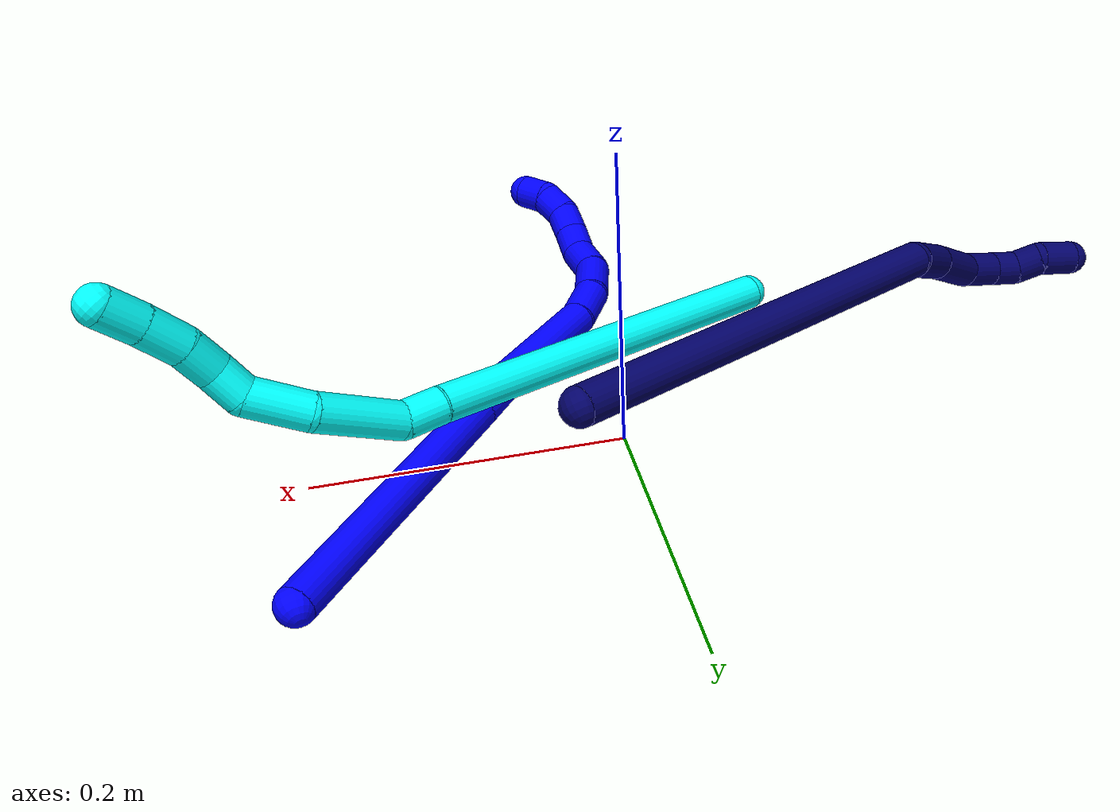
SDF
<sdf version="1.7">
 <world name="default">
  <model name="photoneo_s_sensor">
   <static>1</static>
   <pose>0 0 2 1.57079 1.57079 3.14159</pose>
   <link name="link">
    <inertial><mass>0.1</mass></inertial>
    <sensor name="sensor" type="depth">
     <update_rate>30</update_rate>
     <camera>
      <horizontal_fov>1.22</horizontal_fov>
      <image><width>1920</width><height>1200</height><format>B8G8R8</format></image>
      <clip><near>0.1</near><far>4</far></clip>
      <depth_camera><output>points</output></depth_camera>
     </camera>
     <plugin name="camera_plugin" filename="libgazebo_ros_depth_camera.so">
      <baseline>0.2</baseline>
      <alwaysOn>1</alwaysOn>
      <updateRate>0.0</updateRate>
      <cameraName>camera_ir</cameraName>
      <imageTopicName>/camera/color/image_raw</imageTopicName>
      <cameraInfoTopicName>/camera/color/camera_info</cameraInfoTopicName>
      <depthImageTopicName>/camera/depth/image_raw</depthImageTopicName>
      <depthImageCameraInfoTopicName>/camera/depth/camera_info</depthImageCameraInfoTopicName>
      <pointCloudTopicName>/camera/depth/points</pointCloudTopicName>
      <frameName>fr_optical</frameName>
      <pointCloudCutoff>0.1</pointCloudCutoff>
      <pointCloudCutoffMax>2.0</pointCloudCutoffMax>
      <distortionK1>0</distortionK1>
      <distortionK2>0</distortionK2>
      <distortionK3>0</distortionK3>
      <distortionT1>0</distortionT1>
      <distortionT2>0</distortionT2>
      <CxPrime>0</CxPrime>
      <Cx>0</Cx>
      <Cy>0</Cy>
      <focalLength>0</focalLength>
      <hackBaseline>0</hackBaseline>
     </plugin>
    </sensor>
   </link>
  </model>
  <model name="bin">
   <static>1</static>
   <link name="bottom">
    <collision name="collision-bottom">
     <pose>0 0 -0.01 0 -0 0</pose>
     <geometry><box><size>0.8 0.6 0.02</size></box></geometry>
     <surface>
      <friction><ode><mu>100</mu><mu2>100</mu2></ode></friction>
      <contact><collide_bitmask>65535</collide_bitmask></contact>
     </surface>
    </collision>
   </link>
   <link name="west_wall">
    <collision name="collision-west_wall">
     <pose>-0.41 0 0.1 0 -0 0</pose>
     <geometry><box><size>0.02 0.6 0.2</size></box></geometry>
     <surface>
      <friction><ode><mu>100</mu><mu2>100</mu2></ode></friction>
      <contact><collide_bitmask>65535</collide_bitmask></contact>
     </surface>
    </collision>
   </link>
   <link name="east_wall">
    <collision name="collision-east_wall">
     <pose>0.41 0 0.1 0 -0 0</pose>
     <geometry><box><size>0.02 0.6 0.2</size></box></geometry>
     <surface>
      <friction><ode><mu>100</mu><mu2>100</mu2></ode></friction>
      <contact><collide_bitmask>65535</collide_bitmask></contact>
     </surface>
    </collision>
   </link>
   <link name="south_wall">
    <collision name="collision-south_wall">
     <pose>0 -0.31 0.1 0 -0 0</pose>
     <geometry><box><size>0.8 0.02 0.2</size></box></geometry>
     <surface>
      <friction><ode><mu>100</mu><mu2>100</mu2></ode></friction>
      <contact><collide_bitmask>65535</collide_bitmask></contact>
     </surface>
    </collision>
   </link>
   <link name="north_wall">
    <collision name="collision-north_wall">
     <pose>0 0.31 0.1 0 -0 0</pose>
     <geometry><box><size>0.8 0.02 0.2</size></box></geometry>
     <surface>
      <friction><ode><mu>100</mu><mu2>100</mu2></ode></friction>
      <contact><collide_bitmask>65535</collide_bitmask></contact>
     </surface>
    </collision>
   </link>
  </model>
  <model name="1">
   <static>0</static>
   <link name="1">
    <collision name="collision-cylinder-e_1_1_4">
     <pose>-0.047788 -0.061187 0.062227 0.776971 -0.50099 -0.208687</pose>
     <geometry><cylinder><radius>0.0125</radius><length>0.198995</length></cylinder></geometry>
     <surface>
      <friction><ode><mu>1.16</mu><mu2>1.16</mu2><slip1>0</slip1><slip2>0</slip2></ode></friction>
      <contact><ode><kp>1e+06</kp><kd>1</kd><max_vel>0</max_vel><min_depth>0.001</min_depth></ode></contact>
     </surface>
    </collision>
    <visual name="visual-cylinder-e_1_1_4">
     <pose>-0.047788 -0.061187 0.062227 0.776971 -0.50099 -0.208687</pose>
     <geometry><cylinder><radius>0.0125</radius><length>0.198995</length></cylinder></geometry>
     <material><ambient>0 0 1 1</ambient></material>
    </visual>
    <collision name="collision-cylinder-e_2_4_5">
     <pose>-0.10465 -0.129937 0.133306 0.706986 -0.662027 -0.252267</pose>
     <geometry><cylinder><radius>0.0125</radius><length>0.029522</length></cylinder></geometry>
     <surface>
      <friction><ode><mu>1.16</mu><mu2>1.16</mu2><slip1>0</slip1><slip2>0</slip2></ode></friction>
      <contact><ode><kp>1e+06</kp><kd>1</kd><max_vel>0</max_vel><min_depth>0.001</min_depth></ode></contact>
     </surface>
    </collision>
    <visual name="visual-cylinder-e_2_4_5">
     <pose>-0.10465 -0.129937 0.133306 0.706986 -0.662027 -0.252267</pose>
     <geometry><cylinder><radius>0.0125</radius><length>0.029522</length></cylinder></geometry>
     <material><ambient>0 0 1 1</ambient></material>
    </visual>
    <collision name="collision-cylinder-e_3_5_6">
     <pose>-0.139918 -0.167301 0.168571 0.845625 -0.581835 -0.267829</pose>
     <geometry><cylinder><radius>0.0125</radius><length>0.095329</length></cylinder></geometry>
     <surface>
      <friction><ode><mu>1.16</mu><mu2>1.16</mu2><slip1>0</slip1><slip2>0</slip2></ode></friction>
      <contact><ode><kp>1e+06</kp><kd>1</kd><max_vel>0</max_vel><min_depth>0.001</min_depth></ode></contact>
     </surface>
    </collision>
    <visual name="visual-cylinder-e_3_5_6">
     <pose>-0.139918 -0.167301 0.168571 0.845625 -0.581835 -0.267829</pose>
     <geometry><cylinder><radius>0.0125</radius><length>0.095329</length></cylinder></geometry>
     <material><ambient>0 0 1 1</ambient></material>
    </visual>
    <collision name="collision-cylinder-e_4_6_7">
     <pose>-0.17296 -0.205547 0.206789 0.6209 -0.440771 -0.143498</pose>
     <geometry><cylinder><radius>0.0125</radius><length>0.032099</length></cylinder></geometry>
     <surface>
      <friction><ode><mu>1.16</mu><mu2>1.16</mu2><slip1>0</slip1><slip2>0</slip2></ode></friction>
      <contact><ode><kp>1e+06</kp><kd>1</kd><max_vel>0</max_vel><min_depth>0.001</min_depth></ode></contact>
     </surface>
    </collision>
    <visual name="visual-cylinder-e_4_6_7">
     <pose>-0.17296 -0.205547 0.206789 0.6209 -0.440771 -0.143498</pose>
     <geometry><cylinder><radius>0.0125</radius><length>0.032099</length></cylinder></geometry>
     <material><ambient>0 0 1 1</ambient></material>
    </visual>
    <collision name="collision-cylinder-e_5_7_8">
     <pose>-0.182795 -0.222759 0.234167 0.512783 -0.165665 -0.043524</pose>
     <geometry><cylinder><radius>0.0125</radius><length>0.036236</length></cylinder></geometry>
     <surface>
      <friction><ode><mu>1.16</mu><mu2>1.16</mu2><slip1>0</slip1><slip2>0</slip2></ode></friction>
      <contact><ode><kp>1e+06</kp><kd>1</kd><max_vel>0</max_vel><min_depth>0.001</min_depth></ode></contact>
     </surface>
    </collision>
    <visual name="visual-cylinder-e_5_7_8">
     <pose>-0.182795 -0.222759 0.234167 0.512783 -0.165665 -0.043524</pose>
     <geometry><cylinder><radius>0.0125</radius><length>0.036236</length></cylinder></geometry>
     <material><ambient>0 0 1 1</ambient></material>
    </visual>
    <collision name="collision-cylinder-e_6_8_9">
     <pose>-0.183669 -0.234596 0.26282 0.230466 0.15606 0.0181</pose>
     <geometry><cylinder><radius>0.0125</radius><length>0.027203</length></cylinder></geometry>
     <surface>
      <friction><ode><mu>1.16</mu><mu2>1.16</mu2><slip1>0</slip1><slip2>0</slip2></ode></friction>
      <contact><ode><kp>1e+06</kp><kd>1</kd><max_vel>0</max_vel><min_depth>0.001</min_depth></ode></contact>
     </surface>
    </collision>
    <visual name="visual-cylinder-e_6_8_9">
     <pose>-0.183669 -0.234596 0.26282 0.230466 0.15606 0.0181</pose>
     <geometry><cylinder><radius>0.0125</radius><length>0.027203</length></cylinder></geometry>
     <material><ambient>0 0 1 1</ambient></material>
    </visual>
    <collision name="collision-cylinder-e_7_9_10">
     <pose>-0.182825 -0.237369 0.285985 -0.029342 -0.125291 0.001841</pose>
     <geometry><cylinder><radius>0.0125</radius><length>0.020337</length></cylinder></geometry>
     <surface>
      <friction><ode><mu>1.16</mu><mu2>1.16</mu2><slip1>0</slip1><slip2>0</slip2></ode></friction>
      <contact><ode><kp>1e+06</kp><kd>1</kd><max_vel>0</max_vel><min_depth>0.001</min_depth></ode></contact>
     </surface>
    </collision>
    <visual name="visual-cylinder-e_7_9_10">
     <pose>-0.182825 -0.237369 0.285985 -0.029342 -0.125291 0.001841</pose>
     <geometry><cylinder><radius>0.0125</radius><length>0.020337</length></cylinder></geometry>
     <material><ambient>0 0 1 1</ambient></material>
    </visual>
    <collision name="collision-cylinder-e_8_10_11">
     <pose>-0.185231 -0.235917 0.306025 -0.115547 -0.112752 0.006528</pose>
     <geometry><cylinder><radius>0.0125</radius><length>0.020174</length></cylinder></geometry>
     <surface>
      <friction><ode><mu>1.16</mu><mu2>1.16</mu2><slip1>0</slip1><slip2>0</slip2></ode></friction>
      <contact><ode><kp>1e+06</kp><kd>1</kd><max_vel>0</max_vel><min_depth>0.001</min_depth></ode></contact>
     </surface>
    </collision>
    <visual name="visual-cylinder-e_8_10_11">
     <pose>-0.185231 -0.235917 0.306025 -0.115547 -0.112752 0.006528</pose>
     <geometry><cylinder><radius>0.0125</radius><length>0.020174</length></cylinder></geometry>
     <material><ambient>0 0 1 1</ambient></material>
    </visual>
    <collision name="collision-cylinder-e_9_11_12">
     <pose>-0.184079 -0.231832 0.325308 -0.304399 0.229833 -0.035405</pose>
     <geometry><cylinder><radius>0.0125</radius><length>0.020081</length></cylinder></geometry>
     <surface>
      <friction><ode><mu>1.16</mu><mu2>1.16</mu2><slip1>0</slip1><slip2>0</slip2></ode></friction>
      <contact><ode><kp>1e+06</kp><kd>1</kd><max_vel>0</max_vel><min_depth>0.001</min_depth></ode></contact>
     </surface>
    </collision>
    <visual name="visual-cylinder-e_9_11_12">
     <pose>-0.184079 -0.231832 0.325308 -0.304399 0.229833 -0.035405</pose>
     <geometry><cylinder><radius>0.0125</radius><length>0.020081</length></cylinder></geometry>
     <material><ambient>0 0 1 1</ambient></material>
    </visual>
    <collision name="collision-cylinder-e_10_12_2">
     <pose>-0.176008 -0.228151 0.342774 -0.09191 0.615872 -0.029251</pose>
     <geometry><cylinder><radius>0.0125</radius><length>0.020024</length></cylinder></geometry>
     <surface>
      <friction><ode><mu>1.16</mu><mu2>1.16</mu2><slip1>0</slip1><slip2>0</slip2></ode></friction>
      <contact><ode><kp>1e+06</kp><kd>1</kd><max_vel>0</max_vel><min_depth>0.001</min_depth></ode></contact>
     </surface>
    </collision>
    <visual name="visual-cylinder-e_10_12_2">
     <pose>-0.176008 -0.228151 0.342774 -0.09191 0.615872 -0.029251</pose>
     <geometry><cylinder><radius>0.0125</radius><length>0.020024</length></cylinder></geometry>
     <material><ambient>0 0 1 1</ambient></material>
    </visual>
    <collision name="collision-sphere-2">
     <pose>-0.170224 -0.227401 0.350912 0 -0 0</pose>
     <geometry><sphere><radius>0.0125</radius></sphere></geometry>
     <surface>
      <friction><ode><mu>1.16</mu><mu2>1.16</mu2><slip1>0</slip1><slip2>0</slip2></ode></friction>
      <contact><ode><kp>1e+06</kp><kd>1</kd><max_vel>0</max_vel><min_depth>0.001</min_depth></ode></contact>
     </surface>
    </collision>
    <visual name="visual-sphere-2">
     <pose>-0.170224 -0.227401 0.350912 0 -0 0</pose>
     <geometry><sphere><radius>0.0125</radius></sphere></geometry>
     <material><ambient>0 0 1 1</ambient></material>
    </visual>
    <collision name="collision-sphere-12">
     <pose>-0.181791 -0.228901 0.334635 0 -0 0</pose>
     <geometry><sphere><radius>0.0125</radius></sphere></geometry>
     <surface>
      <friction><ode><mu>1.16</mu><mu2>1.16</mu2><slip1>0</slip1><slip2>0</slip2></ode></friction>
      <contact><ode><kp>1e+06</kp><kd>1</kd><max_vel>0</max_vel><min_depth>0.001</min_depth></ode></contact>
     </surface>
    </collision>
    <visual name="visual-sphere-12">
     <pose>-0.181791 -0.228901 0.334635 0 -0 0</pose>
     <geometry><sphere><radius>0.0125</radius></sphere></geometry>
     <material><ambient>0 0 1 1</ambient></material>
    </visual>
    <collision name="collision-sphere-11">
     <pose>-0.186366 -0.234762 0.315982 0 -0 0</pose>
     <geometry><sphere><radius>0.0125</radius></sphere></geometry>
     <surface>
      <friction><ode><mu>1.16</mu><mu2>1.16</mu2><slip1>0</slip1><slip2>0</slip2></ode></friction>
      <contact><ode><kp>1e+06</kp><kd>1</kd><max_vel>0</max_vel><min_depth>0.001</min_depth></ode></contact>
     </surface>
    </collision>
    <visual name="visual-sphere-11">
     <pose>-0.186366 -0.234762 0.315982 0 -0 0</pose>
     <geometry><sphere><radius>0.0125</radius></sphere></geometry>
     <material><ambient>0 0 1 1</ambient></material>
    </visual>
    <collision name="collision-sphere-10">
     <pose>-0.184096 -0.237073 0.296069 0 -0 0</pose>
     <geometry><sphere><radius>0.0125</radius></sphere></geometry>
     <surface>
      <friction><ode><mu>1.16</mu><mu2>1.16</mu2><slip1>0</slip1><slip2>0</slip2></ode></friction>
      <contact><ode><kp>1e+06</kp><kd>1</kd><max_vel>0</max_vel><min_depth>0.001</min_depth></ode></contact>
     </surface>
    </collision>
    <visual name="visual-sphere-10">
     <pose>-0.184096 -0.237073 0.296069 0 -0 0</pose>
     <geometry><sphere><radius>0.0125</radius></sphere></geometry>
     <material><ambient>0 0 1 1</ambient></material>
    </visual>
    <collision name="collision-sphere-9">
     <pose>-0.181555 -0.237665 0.275901 0 -0 0</pose>
     <geometry><sphere><radius>0.0125</radius></sphere></geometry>
     <surface>
      <friction><ode><mu>1.16</mu><mu2>1.16</mu2><slip1>0</slip1><slip2>0</slip2></ode></friction>
      <contact><ode><kp>1e+06</kp><kd>1</kd><max_vel>0</max_vel><min_depth>0.001</min_depth></ode></contact>
     </surface>
    </collision>
    <visual name="visual-sphere-9">
     <pose>-0.181555 -0.237665 0.275901 0 -0 0</pose>
     <geometry><sphere><radius>0.0125</radius></sphere></geometry>
     <material><ambient>0 0 1 1</ambient></material>
    </visual>
    <collision name="collision-sphere-4">
     <pose>-0.095576 -0.122374 0.124454 0 -0 0</pose>
     <geometry><sphere><radius>0.0125</radius></sphere></geometry>
     <surface>
      <friction><ode><mu>1.16</mu><mu2>1.16</mu2><slip1>0</slip1><slip2>0</slip2></ode></friction>
      <contact><ode><kp>1e+06</kp><kd>1</kd><max_vel>0</max_vel><min_depth>0.001</min_depth></ode></contact>
     </surface>
    </collision>
    <visual name="visual-sphere-4">
     <pose>-0.095576 -0.122374 0.124454 0 -0 0</pose>
     <geometry><sphere><radius>0.0125</radius></sphere></geometry>
     <material><ambient>0 0 1 1</ambient></material>
    </visual>
    <collision name="collision-sphere-1">
     <geometry><sphere><radius>0.0125</radius></sphere></geometry>
     <surface>
      <friction><ode><mu>1.16</mu><mu2>1.16</mu2><slip1>0</slip1><slip2>0</slip2></ode></friction>
      <contact><ode><kp>1e+06</kp><kd>1</kd><max_vel>0</max_vel><min_depth>0.001</min_depth></ode></contact>
     </surface>
    </collision>
    <visual name="visual-sphere-1">
     <geometry><sphere><radius>0.0125</radius></sphere></geometry>
     <material><ambient>0 0 1 1</ambient></material>
    </visual>
    <collision name="collision-sphere-8">
     <pose>-0.185783 -0.231526 0.249739 0 -0 0</pose>
     <geometry><sphere><radius>0.0125</radius></sphere></geometry>
     <surface>
      <friction><ode><mu>1.16</mu><mu2>1.16</mu2><slip1>0</slip1><slip2>0</slip2></ode></friction>
      <contact><ode><kp>1e+06</kp><kd>1</kd><max_vel>0</max_vel><min_depth>0.001</min_depth></ode></contact>
     </surface>
    </collision>
    <visual name="visual-sphere-8">
     <pose>-0.185783 -0.231526 0.249739 0 -0 0</pose>
     <geometry><sphere><radius>0.0125</radius></sphere></geometry>
     <material><ambient>0 0 1 1</ambient></material>
    </visual>
    <collision name="collision-sphere-5">
     <pose>-0.113724 -0.137499 0.142159 0 -0 0</pose>
     <geometry><sphere><radius>0.0125</radius></sphere></geometry>
     <surface>
      <friction><ode><mu>1.16</mu><mu2>1.16</mu2><slip1>0</slip1><slip2>0</slip2></ode></friction>
      <contact><ode><kp>1e+06</kp><kd>1</kd><max_vel>0</max_vel><min_depth>0.001</min_depth></ode></contact>
     </surface>
    </collision>
    <visual name="visual-sphere-5">
     <pose>-0.113724 -0.137499 0.142159 0 -0 0</pose>
     <geometry><sphere><radius>0.0125</radius></sphere></geometry>
     <material><ambient>0 0 1 1</ambient></material>
    </visual>
    <collision name="collision-sphere-6">
     <pose>-0.166113 -0.197103 0.194983 0 -0 0</pose>
     <geometry><sphere><radius>0.0125</radius></sphere></geometry>
     <surface>
      <friction><ode><mu>1.16</mu><mu2>1.16</mu2><slip1>0</slip1><slip2>0</slip2></ode></friction>
      <contact><ode><kp>1e+06</kp><kd>1</kd><max_vel>0</max_vel><min_depth>0.001</min_depth></ode></contact>
     </surface>
    </collision>
    <visual name="visual-sphere-6">
     <pose>-0.166113 -0.197103 0.194983 0 -0 0</pose>
     <geometry><sphere><radius>0.0125</radius></sphere></geometry>
     <material><ambient>0 0 1 1</ambient></material>
    </visual>
    <collision name="collision-sphere-7">
     <pose>-0.179807 -0.213992 0.218595 0 -0 0</pose>
     <geometry><sphere><radius>0.0125</radius></sphere></geometry>
     <surface>
      <friction><ode><mu>1.16</mu><mu2>1.16</mu2><slip1>0</slip1><slip2>0</slip2></ode></friction>
      <contact><ode><kp>1e+06</kp><kd>1</kd><max_vel>0</max_vel><min_depth>0.001</min_depth></ode></contact>
     </surface>
    </collision>
    <visual name="visual-sphere-7">
     <pose>-0.179807 -0.213992 0.218595 0 -0 0</pose>
     <geometry><sphere><radius>0.0125</radius></sphere></geometry>
     <material><ambient>0 0 1 1</ambient></material>
    </visual>
    <inertial>
     <pose>-0.11557 -0.143645 0.160093 0 -0 0</pose>
     <mass>0.5</mass>
     <inertia>
      <ixx>0.000499</ixx>
      <ixy>0</ixy>
      <ixz>0</ixz>
      <iyy>0.000429</iyy>
      <iyz>0</iyz>
      <izz>0.000854</izz>
     </inertia>
    </inertial>
   </link>
   <pose>0.209703 0.117588 0.011491 1.16838 0.589043 -0.040525</pose>
  </model>
  <model name="3">
   <static>0</static>
   <link name="3">
    <collision name="collision-cylinder-e_1_1_4">
     <pose>0.07858 0.048587 -0.102745 -2.69987 0.604925 -1.89414</pose>
     <geometry><cylinder><radius>0.0125</radius><length>0.276349</length></cylinder></geometry>
     <surface>
      <friction><ode><mu>1.16</mu><mu2>1.16</mu2><slip1>0</slip1><slip2>0</slip2></ode></friction>
      <contact><ode><kp>1e+06</kp><kd>1</kd><max_vel>0</max_vel><min_depth>0.001</min_depth></ode></contact>
     </surface>
    </collision>
    <visual name="visual-cylinder-e_1_1_4">
     <pose>0.07858 0.048587 -0.102745 -2.69987 0.604925 -1.89414</pose>
     <geometry><cylinder><radius>0.0125</radius><length>0.276349</length></cylinder></geometry>
     <material><ambient>0.003922 1 0.996078 1</ambient></material>
    </visual>
    <collision name="collision-cylinder-e_2_4_5">
     <pose>0.164092 0.100823 -0.216525 -2.8223 0.53783 -2.08406</pose>
     <geometry><cylinder><radius>0.0125</radius><length>0.027064</length></cylinder></geometry>
     <surface>
      <friction><ode><mu>1.16</mu><mu2>1.16</mu2><slip1>0</slip1><slip2>0</slip2></ode></friction>
      <contact><ode><kp>1e+06</kp><kd>1</kd><max_vel>0</max_vel><min_depth>0.001</min_depth></ode></contact>
     </surface>
    </collision>
    <visual name="visual-cylinder-e_2_4_5">
     <pose>0.164092 0.100823 -0.216525 -2.8223 0.53783 -2.08406</pose>
     <geometry><cylinder><radius>0.0125</radius><length>0.027064</length></cylinder></geometry>
     <material><ambient>0.003922 1 0.996078 1</ambient></material>
    </visual>
    <collision name="collision-cylinder-e_3_5_6">
     <pose>0.196277 0.111014 -0.241889 -2.71328 1.01307 -2.3944</pose>
     <geometry><cylinder><radius>0.0125</radius><length>0.059528</length></cylinder></geometry>
     <surface>
      <friction><ode><mu>1.16</mu><mu2>1.16</mu2><slip1>0</slip1><slip2>0</slip2></ode></friction>
      <contact><ode><kp>1e+06</kp><kd>1</kd><max_vel>0</max_vel><min_depth>0.001</min_depth></ode></contact>
     </surface>
    </collision>
    <visual name="visual-cylinder-e_3_5_6">
     <pose>0.196277 0.111014 -0.241889 -2.71328 1.01307 -2.3944</pose>
     <geometry><cylinder><radius>0.0125</radius><length>0.059528</length></cylinder></geometry>
     <material><ambient>0.003922 1 0.996078 1</ambient></material>
    </visual>
    <collision name="collision-cylinder-e_4_6_7">
     <pose>0.238914 0.115432 -0.26568 2.92073 1.06197 2.76836</pose>
     <geometry><cylinder><radius>0.0125</radius><length>0.039809</length></cylinder></geometry>
     <surface>
      <friction><ode><mu>1.16</mu><mu2>1.16</mu2><slip1>0</slip1><slip2>0</slip2></ode></friction>
      <contact><ode><kp>1e+06</kp><kd>1</kd><max_vel>0</max_vel><min_depth>0.001</min_depth></ode></contact>
     </surface>
    </collision>
    <visual name="visual-cylinder-e_4_6_7">
     <pose>0.238914 0.115432 -0.26568 2.92073 1.06197 2.76836</pose>
     <geometry><cylinder><radius>0.0125</radius><length>0.039809</length></cylinder></geometry>
     <material><ambient>0.003922 1 0.996078 1</ambient></material>
    </visual>
    <collision name="collision-cylinder-e_5_7_8">
     <pose>0.267045 0.111657 -0.275149 1.57577 1.41838 1.42329</pose>
     <geometry><cylinder><radius>0.0125</radius><length>0.021749</length></cylinder></geometry>
     <surface>
      <friction><ode><mu>1.16</mu><mu2>1.16</mu2><slip1>0</slip1><slip2>0</slip2></ode></friction>
      <contact><ode><kp>1e+06</kp><kd>1</kd><max_vel>0</max_vel><min_depth>0.001</min_depth></ode></contact>
     </surface>
    </collision>
    <visual name="visual-cylinder-e_5_7_8">
     <pose>0.267045 0.111657 -0.275149 1.57577 1.41838 1.42329</pose>
     <geometry><cylinder><radius>0.0125</radius><length>0.021749</length></cylinder></geometry>
     <material><ambient>0.003922 1 0.996078 1</ambient></material>
    </visual>
    <collision name="collision-cylinder-e_6_8_9">
     <pose>0.289244 0.111518 -0.274935 -1.42488 1.4381 -1.29484</pose>
     <geometry><cylinder><radius>0.0125</radius><length>0.023104</length></cylinder></geometry>
     <surface>
      <friction><ode><mu>1.16</mu><mu2>1.16</mu2><slip1>0</slip1><slip2>0</slip2></ode></friction>
      <contact><ode><kp>1e+06</kp><kd>1</kd><max_vel>0</max_vel><min_depth>0.001</min_depth></ode></contact>
     </surface>
    </collision>
    <visual name="visual-cylinder-e_6_8_9">
     <pose>0.289244 0.111518 -0.274935 -1.42488 1.4381 -1.29484</pose>
     <geometry><cylinder><radius>0.0125</radius><length>0.023104</length></cylinder></geometry>
     <material><ambient>0.003922 1 0.996078 1</ambient></material>
    </visual>
    <collision name="collision-cylinder-e_7_9_10">
     <pose>0.313794 0.115206 -0.276958 -2.37196 1.33652 -2.19355</pose>
     <geometry><cylinder><radius>0.0125</radius><length>0.026935</length></cylinder></geometry>
     <surface>
      <friction><ode><mu>1.16</mu><mu2>1.16</mu2><slip1>0</slip1><slip2>0</slip2></ode></friction>
      <contact><ode><kp>1e+06</kp><kd>1</kd><max_vel>0</max_vel><min_depth>0.001</min_depth></ode></contact>
     </surface>
    </collision>
    <visual name="visual-cylinder-e_7_9_10">
     <pose>0.313794 0.115206 -0.276958 -2.37196 1.33652 -2.19355</pose>
     <geometry><cylinder><radius>0.0125</radius><length>0.026935</length></cylinder></geometry>
     <material><ambient>0.003922 1 0.996078 1</ambient></material>
    </visual>
    <collision name="collision-cylinder-e_8_10_2">
     <pose>0.339047 0.120027 -0.281918 -2.36903 1.26849 -2.1315</pose>
     <geometry><cylinder><radius>0.0125</radius><length>0.025463</length></cylinder></geometry>
     <surface>
      <friction><ode><mu>1.16</mu><mu2>1.16</mu2><slip1>0</slip1><slip2>0</slip2></ode></friction>
      <contact><ode><kp>1e+06</kp><kd>1</kd><max_vel>0</max_vel><min_depth>0.001</min_depth></ode></contact>
     </surface>
    </collision>
    <visual name="visual-cylinder-e_8_10_2">
     <pose>0.339047 0.120027 -0.281918 -2.36903 1.26849 -2.1315</pose>
     <geometry><cylinder><radius>0.0125</radius><length>0.025463</length></cylinder></geometry>
     <material><ambient>0.003922 1 0.996078 1</ambient></material>
    </visual>
    <collision name="collision-sphere-2">
     <pose>0.351202 0.122672 -0.284632 0 -0 0</pose>
     <geometry><sphere><radius>0.0125</radius></sphere></geometry>
     <surface>
      <friction><ode><mu>1.16</mu><mu2>1.16</mu2><slip1>0</slip1><slip2>0</slip2></ode></friction>
      <contact><ode><kp>1e+06</kp><kd>1</kd><max_vel>0</max_vel><min_depth>0.001</min_depth></ode></contact>
     </surface>
    </collision>
    <visual name="visual-sphere-2">
     <pose>0.351202 0.122672 -0.284632 0 -0 0</pose>
     <geometry><sphere><radius>0.0125</radius></sphere></geometry>
     <material><ambient>0.003922 1 0.996078 1</ambient></material>
    </visual>
    <collision name="collision-sphere-10">
     <pose>0.326893 0.117381 -0.279203 0 -0 0</pose>
     <geometry><sphere><radius>0.0125</radius></sphere></geometry>
     <surface>
      <friction><ode><mu>1.16</mu><mu2>1.16</mu2><slip1>0</slip1><slip2>0</slip2></ode></friction>
      <contact><ode><kp>1e+06</kp><kd>1</kd><max_vel>0</max_vel><min_depth>0.001</min_depth></ode></contact>
     </surface>
    </collision>
    <visual name="visual-sphere-10">
     <pose>0.326893 0.117381 -0.279203 0 -0 0</pose>
     <geometry><sphere><radius>0.0125</radius></sphere></geometry>
     <material><ambient>0.003922 1 0.996078 1</ambient></material>
    </visual>
    <collision name="collision-sphere-9">
     <pose>0.300694 0.11303 -0.274713 0 -0 0</pose>
     <geometry><sphere><radius>0.0125</radius></sphere></geometry>
     <surface>
      <friction><ode><mu>1.16</mu><mu2>1.16</mu2><slip1>0</slip1><slip2>0</slip2></ode></friction>
      <contact><ode><kp>1e+06</kp><kd>1</kd><max_vel>0</max_vel><min_depth>0.001</min_depth></ode></contact>
     </surface>
    </collision>
    <visual name="visual-sphere-9">
     <pose>0.300694 0.11303 -0.274713 0 -0 0</pose>
     <geometry><sphere><radius>0.0125</radius></sphere></geometry>
     <material><ambient>0.003922 1 0.996078 1</ambient></material>
    </visual>
    <collision name="collision-sphere-4">
     <pose>0.15716 0.097175 -0.205491 0 -0 0</pose>
     <geometry><sphere><radius>0.0125</radius></sphere></geometry>
     <surface>
      <friction><ode><mu>1.16</mu><mu2>1.16</mu2><slip1>0</slip1><slip2>0</slip2></ode></friction>
      <contact><ode><kp>1e+06</kp><kd>1</kd><max_vel>0</max_vel><min_depth>0.001</min_depth></ode></contact>
     </surface>
    </collision>
    <visual name="visual-sphere-4">
     <pose>0.15716 0.097175 -0.205491 0 -0 0</pose>
     <geometry><sphere><radius>0.0125</radius></sphere></geometry>
     <material><ambient>0.003922 1 0.996078 1</ambient></material>
    </visual>
    <collision name="collision-sphere-1">
     <geometry><sphere><radius>0.0125</radius></sphere></geometry>
     <surface>
      <friction><ode><mu>1.16</mu><mu2>1.16</mu2><slip1>0</slip1><slip2>0</slip2></ode></friction>
      <contact><ode><kp>1e+06</kp><kd>1</kd><max_vel>0</max_vel><min_depth>0.001</min_depth></ode></contact>
     </surface>
    </collision>
    <visual name="visual-sphere-1">
     <geometry><sphere><radius>0.0125</radius></sphere></geometry>
     <material><ambient>0.003922 1 0.996078 1</ambient></material>
    </visual>
    <collision name="collision-sphere-8">
     <pose>0.277794 0.110006 -0.275157 0 -0 0</pose>
     <geometry><sphere><radius>0.0125</radius></sphere></geometry>
     <surface>
      <friction><ode><mu>1.16</mu><mu2>1.16</mu2><slip1>0</slip1><slip2>0</slip2></ode></friction>
      <contact><ode><kp>1e+06</kp><kd>1</kd><max_vel>0</max_vel><min_depth>0.001</min_depth></ode></contact>
     </surface>
    </collision>
    <visual name="visual-sphere-8">
     <pose>0.277794 0.110006 -0.275157 0 -0 0</pose>
     <geometry><sphere><radius>0.0125</radius></sphere></geometry>
     <material><ambient>0.003922 1 0.996078 1</ambient></material>
    </visual>
    <collision name="collision-sphere-5">
     <pose>0.171024 0.104471 -0.227559 0 -0 0</pose>
     <geometry><sphere><radius>0.0125</radius></sphere></geometry>
     <surface>
      <friction><ode><mu>1.16</mu><mu2>1.16</mu2><slip1>0</slip1><slip2>0</slip2></ode></friction>
      <contact><ode><kp>1e+06</kp><kd>1</kd><max_vel>0</max_vel><min_depth>0.001</min_depth></ode></contact>
     </surface>
    </collision>
    <visual name="visual-sphere-5">
     <pose>0.171024 0.104471 -0.227559 0 -0 0</pose>
     <geometry><sphere><radius>0.0125</radius></sphere></geometry>
     <material><ambient>0.003922 1 0.996078 1</ambient></material>
    </visual>
    <collision name="collision-sphere-6">
     <pose>0.221531 0.117556 -0.256219 0 -0 0</pose>
     <geometry><sphere><radius>0.0125</radius></sphere></geometry>
     <surface>
      <friction><ode><mu>1.16</mu><mu2>1.16</mu2><slip1>0</slip1><slip2>0</slip2></ode></friction>
      <contact><ode><kp>1e+06</kp><kd>1</kd><max_vel>0</max_vel><min_depth>0.001</min_depth></ode></contact>
     </surface>
    </collision>
    <visual name="visual-sphere-6">
     <pose>0.221531 0.117556 -0.256219 0 -0 0</pose>
     <geometry><sphere><radius>0.0125</radius></sphere></geometry>
     <material><ambient>0.003922 1 0.996078 1</ambient></material>
    </visual>
    <collision name="collision-sphere-7">
     <pose>0.256297 0.113308 -0.275141 0 -0 0</pose>
     <geometry><sphere><radius>0.0125</radius></sphere></geometry>
     <surface>
      <friction><ode><mu>1.16</mu><mu2>1.16</mu2><slip1>0</slip1><slip2>0</slip2></ode></friction>
      <contact><ode><kp>1e+06</kp><kd>1</kd><max_vel>0</max_vel><min_depth>0.001</min_depth></ode></contact>
     </surface>
    </collision>
    <visual name="visual-sphere-7">
     <pose>0.256297 0.113308 -0.275141 0 -0 0</pose>
     <geometry><sphere><radius>0.0125</radius></sphere></geometry>
     <material><ambient>0.003922 1 0.996078 1</ambient></material>
    </visual>
    <inertial>
     <pose>0.153854 0.077047 -0.172407 0 -0 0</pose>
     <mass>0.5</mass>
     <inertia>
      <ixx>-0.001837</ixx>
      <ixy>0</ixy>
      <ixz>0</ixz>
      <iyy>-0.000429</iyy>
      <iyz>0</iyz>
      <izz>-0.001689</izz>
     </inertia>
    </inertial>
   </link>
   <pose>-0.130195 -0.142822 0.01149 0.296691 -0.930863 -0.106173</pose>
  </model>
  <model name="7">
   <static>0</static>
   <link name="7">
    <collision name="collision-cylinder-e_1_1_4">
     <pose>-0.138452 -0.06109 -0.015876 1.82505 -1.14305 -1.38745</pose>
     <geometry><cylinder><radius>0.0125</radius><length>0.304321</length></cylinder></geometry>
     <surface>
      <friction><ode><mu>1.16</mu><mu2>1.16</mu2><slip1>0</slip1><slip2>0</slip2></ode></friction>
      <contact><ode><kp>1e+06</kp><kd>1</kd><max_vel>0</max_vel><min_depth>0.001</min_depth></ode></contact>
     </surface>
    </collision>
    <visual name="visual-cylinder-e_1_1_4">
     <pose>-0.138452 -0.06109 -0.015876 1.82505 -1.14305 -1.38745</pose>
     <geometry><cylinder><radius>0.0125</radius><length>0.304321</length></cylinder></geometry>
     <material><ambient>0.003922 0 0.403922 1</ambient></material>
    </visual>
    <collision name="collision-cylinder-e_2_4_5">
     <pose>-0.299949 -0.121561 -0.031765 -1.59333 -1.54396 1.5665</pose>
     <geometry><cylinder><radius>0.0125</radius><length>0.046108</length></cylinder></geometry>
     <surface>
      <friction><ode><mu>1.16</mu><mu2>1.16</mu2><slip1>0</slip1><slip2>0</slip2></ode></friction>
      <contact><ode><kp>1e+06</kp><kd>1</kd><max_vel>0</max_vel><min_depth>0.001</min_depth></ode></contact>
     </surface>
    </collision>
    <visual name="visual-cylinder-e_2_4_5">
     <pose>-0.299949 -0.121561 -0.031765 -1.59333 -1.54396 1.5665</pose>
     <geometry><cylinder><radius>0.0125</radius><length>0.046108</length></cylinder></geometry>
     <material><ambient>0.003922 0 0.403922 1</ambient></material>
    </visual>
    <collision name="collision-cylinder-e_3_5_6">
     <pose>-0.349545 -0.12131 -0.028696 0.118503 -1.45439 -0.105479</pose>
     <geometry><cylinder><radius>0.0125</radius><length>0.053462</length></cylinder></geometry>
     <surface>
      <friction><ode><mu>1.16</mu><mu2>1.16</mu2><slip1>0</slip1><slip2>0</slip2></ode></friction>
      <contact><ode><kp>1e+06</kp><kd>1</kd><max_vel>0</max_vel><min_depth>0.001</min_depth></ode></contact>
     </surface>
    </collision>
    <visual name="visual-cylinder-e_3_5_6">
     <pose>-0.349545 -0.12131 -0.028696 0.118503 -1.45439 -0.105479</pose>
     <geometry><cylinder><radius>0.0125</radius><length>0.053462</length></cylinder></geometry>
     <material><ambient>0.003922 0 0.403922 1</ambient></material>
    </visual>
    <collision name="collision-cylinder-e_4_6_7">
     <pose>-0.388439 -0.127646 -0.022961 1.15275 -1.08409 -0.746208</pose>
     <geometry><cylinder><radius>0.0125</radius><length>0.027932</length></cylinder></geometry>
     <surface>
      <friction><ode><mu>1.16</mu><mu2>1.16</mu2><slip1>0</slip1><slip2>0</slip2></ode></friction>
      <contact><ode><kp>1e+06</kp><kd>1</kd><max_vel>0</max_vel><min_depth>0.001</min_depth></ode></contact>
     </surface>
    </collision>
    <visual name="visual-cylinder-e_4_6_7">
     <pose>-0.388439 -0.127646 -0.022961 1.15275 -1.08409 -0.746208</pose>
     <geometry><cylinder><radius>0.0125</radius><length>0.027932</length></cylinder></geometry>
     <material><ambient>0.003922 0 0.403922 1</ambient></material>
    </visual>
    <collision name="collision-cylinder-e_5_7_8">
     <pose>-0.40848 -0.140047 -0.01733 1.13703 -0.826596 -0.546359</pose>
     <geometry><cylinder><radius>0.0125</radius><length>0.020926</length></cylinder></geometry>
     <surface>
      <friction><ode><mu>1.16</mu><mu2>1.16</mu2><slip1>0</slip1><slip2>0</slip2></ode></friction>
      <contact><ode><kp>1e+06</kp><kd>1</kd><max_vel>0</max_vel><min_depth>0.001</min_depth></ode></contact>
     </surface>
    </collision>
    <visual name="visual-cylinder-e_5_7_8">
     <pose>-0.40848 -0.140047 -0.01733 1.13703 -0.826596 -0.546359</pose>
     <geometry><cylinder><radius>0.0125</radius><length>0.020926</length></cylinder></geometry>
     <material><ambient>0.003922 0 0.403922 1</ambient></material>
    </visual>
    <collision name="collision-cylinder-e_6_8_9">
     <pose>-0.420172 -0.155645 -0.013407 1.46813 -0.409006 -0.369985</pose>
     <geometry><cylinder><radius>0.0125</radius><length>0.020089</length></cylinder></geometry>
     <surface>
      <friction><ode><mu>1.16</mu><mu2>1.16</mu2><slip1>0</slip1><slip2>0</slip2></ode></friction>
      <contact><ode><kp>1e+06</kp><kd>1</kd><max_vel>0</max_vel><min_depth>0.001</min_depth></ode></contact>
     </surface>
    </collision>
    <visual name="visual-cylinder-e_6_8_9">
     <pose>-0.420172 -0.155645 -0.013407 1.46813 -0.409006 -0.369985</pose>
     <geometry><cylinder><radius>0.0125</radius><length>0.020089</length></cylinder></geometry>
     <material><ambient>0.003922 0 0.403922 1</ambient></material>
    </visual>
    <collision name="collision-cylinder-e_7_9_2">
     <pose>-0.434176 -0.173102 -0.00852 1.12684 -0.82868 -0.541994</pose>
     <geometry><cylinder><radius>0.0125</radius><length>0.027162</length></cylinder></geometry>
     <surface>
      <friction><ode><mu>1.16</mu><mu2>1.16</mu2><slip1>0</slip1><slip2>0</slip2></ode></friction>
      <contact><ode><kp>1e+06</kp><kd>1</kd><max_vel>0</max_vel><min_depth>0.001</min_depth></ode></contact>
     </surface>
    </collision>
    <visual name="visual-cylinder-e_7_9_2">
     <pose>-0.434176 -0.173102 -0.00852 1.12684 -0.82868 -0.541994</pose>
     <geometry><cylinder><radius>0.0125</radius><length>0.027162</length></cylinder></geometry>
     <material><ambient>0.003922 0 0.403922 1</ambient></material>
    </visual>
    <collision name="collision-sphere-2">
     <pose>-0.444186 -0.181391 -0.004578 0 -0 0</pose>
     <geometry><sphere><radius>0.0125</radius></sphere></geometry>
     <surface>
      <friction><ode><mu>1.16</mu><mu2>1.16</mu2><slip1>0</slip1><slip2>0</slip2></ode></friction>
      <contact><ode><kp>1e+06</kp><kd>1</kd><max_vel>0</max_vel><min_depth>0.001</min_depth></ode></contact>
     </surface>
    </collision>
    <visual name="visual-sphere-2">
     <pose>-0.444186 -0.181391 -0.004578 0 -0 0</pose>
     <geometry><sphere><radius>0.0125</radius></sphere></geometry>
     <material><ambient>0.003922 0 0.403922 1</ambient></material>
    </visual>
    <collision name="collision-sphere-9">
     <pose>-0.424166 -0.164813 -0.012463 0 -0 0</pose>
     <geometry><sphere><radius>0.0125</radius></sphere></geometry>
     <surface>
      <friction><ode><mu>1.16</mu><mu2>1.16</mu2><slip1>0</slip1><slip2>0</slip2></ode></friction>
      <contact><ode><kp>1e+06</kp><kd>1</kd><max_vel>0</max_vel><min_depth>0.001</min_depth></ode></contact>
     </surface>
    </collision>
    <visual name="visual-sphere-9">
     <pose>-0.424166 -0.164813 -0.012463 0 -0 0</pose>
     <geometry><sphere><radius>0.0125</radius></sphere></geometry>
     <material><ambient>0.003922 0 0.403922 1</ambient></material>
    </visual>
    <collision name="collision-sphere-4">
     <pose>-0.276904 -0.122179 -0.031751 0 -0 0</pose>
     <geometry><sphere><radius>0.0125</radius></sphere></geometry>
     <surface>
      <friction><ode><mu>1.16</mu><mu2>1.16</mu2><slip1>0</slip1><slip2>0</slip2></ode></friction>
      <contact><ode><kp>1e+06</kp><kd>1</kd><max_vel>0</max_vel><min_depth>0.001</min_depth></ode></contact>
     </surface>
    </collision>
    <visual name="visual-sphere-4">
     <pose>-0.276904 -0.122179 -0.031751 0 -0 0</pose>
     <geometry><sphere><radius>0.0125</radius></sphere></geometry>
     <material><ambient>0.003922 0 0.403922 1</ambient></material>
    </visual>
    <collision name="collision-sphere-1">
     <geometry><sphere><radius>0.0125</radius></sphere></geometry>
     <surface>
      <friction><ode><mu>1.16</mu><mu2>1.16</mu2><slip1>0</slip1><slip2>0</slip2></ode></friction>
      <contact><ode><kp>1e+06</kp><kd>1</kd><max_vel>0</max_vel><min_depth>0.001</min_depth></ode></contact>
     </surface>
    </collision>
    <visual name="visual-sphere-1">
     <geometry><sphere><radius>0.0125</radius></sphere></geometry>
     <material><ambient>0.003922 0 0.403922 1</ambient></material>
    </visual>
    <collision name="collision-sphere-8">
     <pose>-0.416177 -0.146478 -0.014352 0 -0 0</pose>
     <geometry><sphere><radius>0.0125</radius></sphere></geometry>
     <surface>
      <friction><ode><mu>1.16</mu><mu2>1.16</mu2><slip1>0</slip1><slip2>0</slip2></ode></friction>
      <contact><ode><kp>1e+06</kp><kd>1</kd><max_vel>0</max_vel><min_depth>0.001</min_depth></ode></contact>
     </surface>
    </collision>
    <visual name="visual-sphere-8">
     <pose>-0.416177 -0.146478 -0.014352 0 -0 0</pose>
     <geometry><sphere><radius>0.0125</radius></sphere></geometry>
     <material><ambient>0.003922 0 0.403922 1</ambient></material>
    </visual>
    <collision name="collision-sphere-5">
     <pose>-0.322994 -0.120942 -0.031779 0 -0 0</pose>
     <geometry><sphere><radius>0.0125</radius></sphere></geometry>
     <surface>
      <friction><ode><mu>1.16</mu><mu2>1.16</mu2><slip1>0</slip1><slip2>0</slip2></ode></friction>
      <contact><ode><kp>1e+06</kp><kd>1</kd><max_vel>0</max_vel><min_depth>0.001</min_depth></ode></contact>
     </surface>
    </collision>
    <visual name="visual-sphere-5">
     <pose>-0.322994 -0.120942 -0.031779 0 -0 0</pose>
     <geometry><sphere><radius>0.0125</radius></sphere></geometry>
     <material><ambient>0.003922 0 0.403922 1</ambient></material>
    </visual>
    <collision name="collision-sphere-6">
     <pose>-0.376095 -0.121677 -0.025613 0 -0 0</pose>
     <geometry><sphere><radius>0.0125</radius></sphere></geometry>
     <surface>
      <friction><ode><mu>1.16</mu><mu2>1.16</mu2><slip1>0</slip1><slip2>0</slip2></ode></friction>
      <contact><ode><kp>1e+06</kp><kd>1</kd><max_vel>0</max_vel><min_depth>0.001</min_depth></ode></contact>
     </surface>
    </collision>
    <visual name="visual-sphere-6">
     <pose>-0.376095 -0.121677 -0.025613 0 -0 0</pose>
     <geometry><sphere><radius>0.0125</radius></sphere></geometry>
     <material><ambient>0.003922 0 0.403922 1</ambient></material>
    </visual>
    <collision name="collision-sphere-7">
     <pose>-0.400783 -0.133616 -0.020309 0 -0 0</pose>
     <geometry><sphere><radius>0.0125</radius></sphere></geometry>
     <surface>
      <friction><ode><mu>1.16</mu><mu2>1.16</mu2><slip1>0</slip1><slip2>0</slip2></ode></friction>
      <contact><ode><kp>1e+06</kp><kd>1</kd><max_vel>0</max_vel><min_depth>0.001</min_depth></ode></contact>
     </surface>
    </collision>
    <visual name="visual-sphere-7">
     <pose>-0.400783 -0.133616 -0.020309 0 -0 0</pose>
     <geometry><sphere><radius>0.0125</radius></sphere></geometry>
     <material><ambient>0.003922 0 0.403922 1</ambient></material>
    </visual>
    <inertial>
     <pose>-0.228566 -0.090012 -0.01867 0 -0 0</pose>
     <mass>0.5</mass>
     <inertia>
      <ixx>-0.000815</ixx>
      <ixy>0</ixy>
      <ixz>0</ixz>
      <iyy>0.000987</iyy>
      <iyz>0</iyz>
      <izz>0.003131</izz>
     </inertia>
    </inertial>
   </link>
   <pose>0.042798 0.082034 0.0877 -2.36225 -0.440649 0.709282</pose>
  </model>
 </world>
</sdf>
